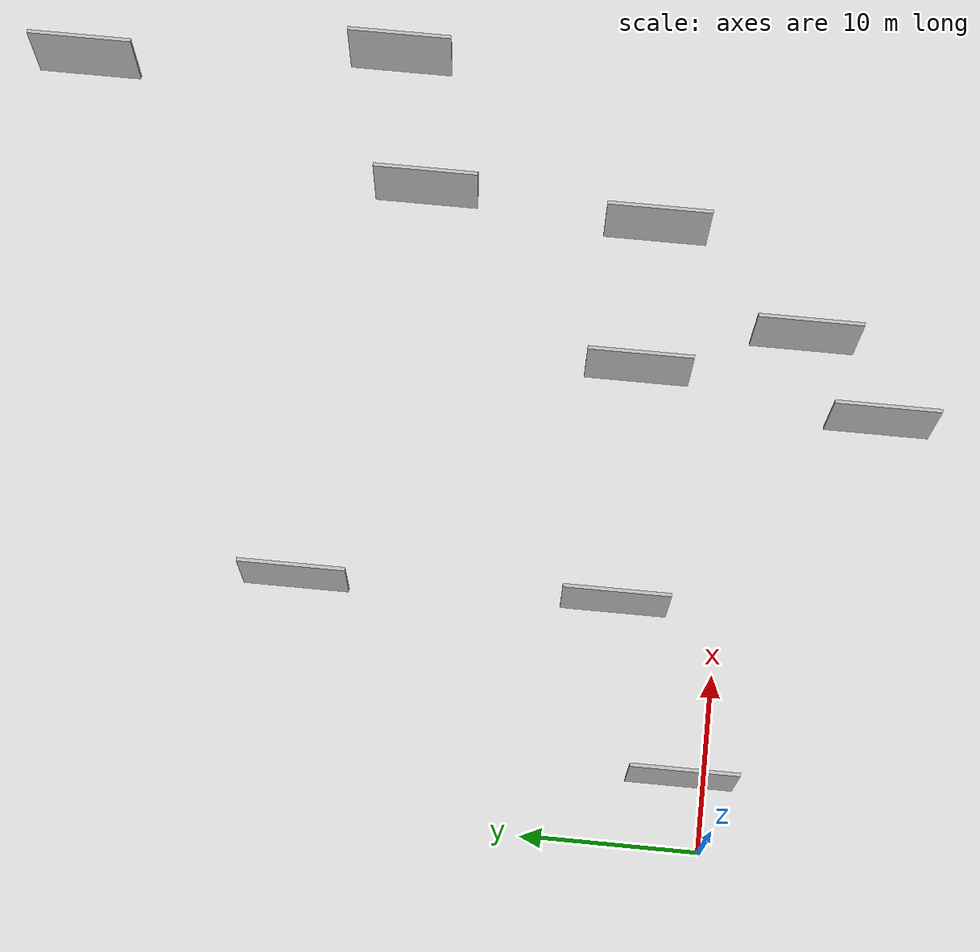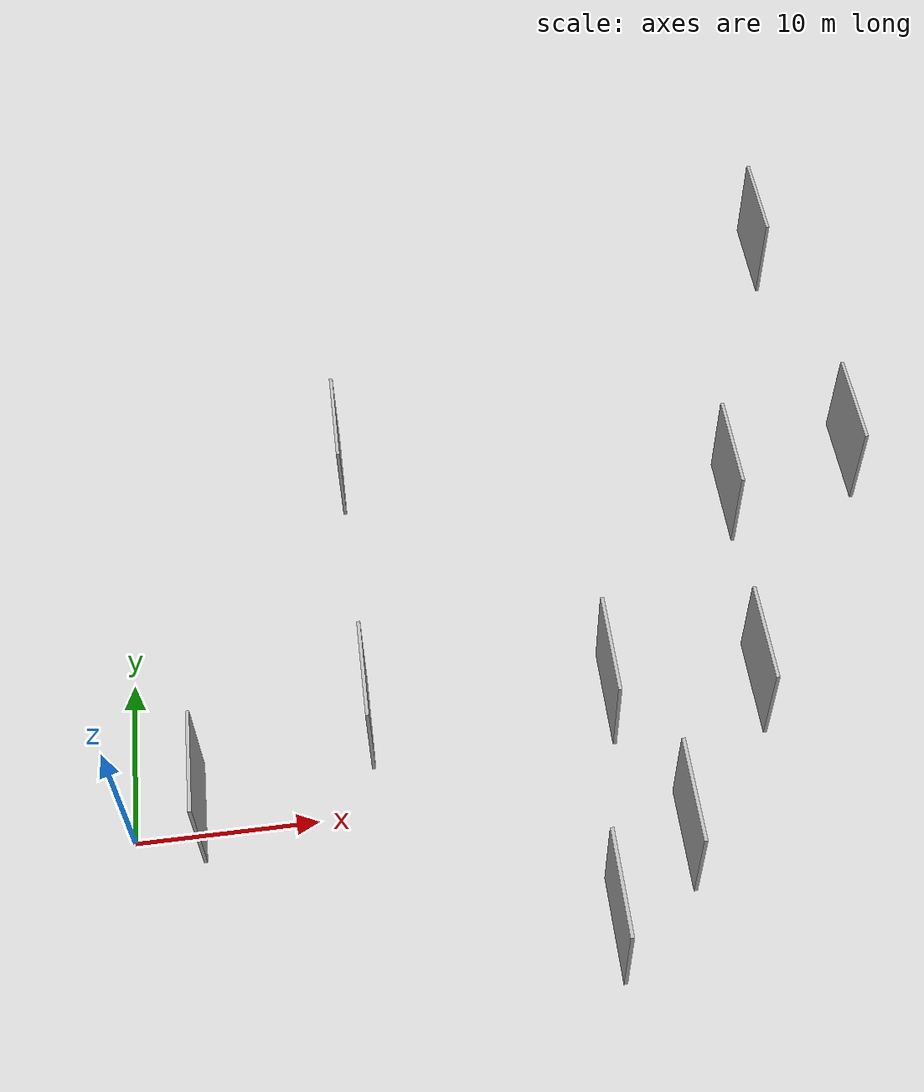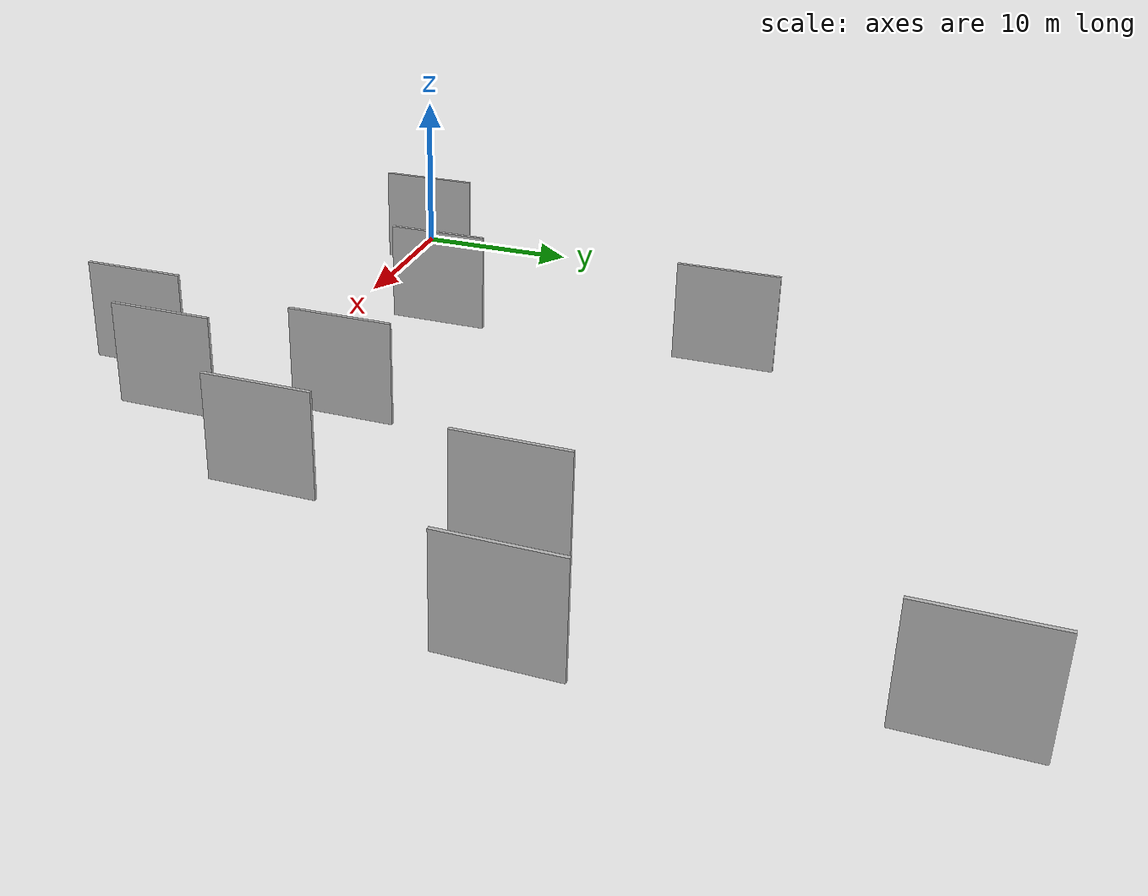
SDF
<sdf version="1.6">
 <world name="default">
  <scene>
   <sky><clouds><speed>12</speed></clouds></sky>
   <ambient>0.4 0.4 0.4 1</ambient>
   <background>0.7 0.7 0.7 1</background>
   <shadows>1</shadows>
  </scene>
  <gravity>0 0 -9.8066</gravity>
  <magnetic_field>6e-06 2.3e-05 -4.2e-05</magnetic_field>
  <physics default="0" name="default_physics" type="ode">
   <ode>
    <solver>
     <type>quick</type>
     <iters>10</iters>
     <sor>1.0</sor>
     <use_dynamic_moi_rescaling>0</use_dynamic_moi_rescaling>
    </solver>
    <constraints>
     <cfm>0</cfm>
     <erp>0.2</erp>
     <contact_max_correcting_vel>100</contact_max_correcting_vel>
     <contact_surface_layer>0.001</contact_surface_layer>
    </constraints>
   </ode>
   <max_step_size>0.004</max_step_size>
   <real_time_factor>1</real_time_factor>
   <real_time_update_rate>250</real_time_update_rate>
  </physics>
  <light name="sun" type="directional">
   <pose>0 0 10 0 0 0</pose>
   <diffuse>0.8 0.8 0.8 1</diffuse>
   <specular>0.2 0.2 0.2 1</specular>
   <attenuation>
    <range>1000</range>
    <constant>0.9</constant>
    <linear>0.01</linear>
    <quadratic>0.001</quadratic>
   </attenuation>
   <direction>-0.5 0.1 -0.9</direction>
  </light>
  <model name="grey_wall_1">
   <static>1</static>
   <pose>3.7303 1.3951 0.0 0.000000 0.000000 1.570796</pose>
   <link name="link">
    <pose>0 0 3.00 0 0 0</pose>
    <collision name="collision"><geometry><box><size>6.00 0.2 6.00</size></box></geometry></collision>
    <visual name="visual">
     <cast_shadows>0</cast_shadows>
     <geometry><box><size>6.00 0.2 6.00</size></box></geometry>
     <material>
      <script>
       <uri>model://HANNAS_wall/materials/scripts</uri>
       <uri>model://HANNAS_wall/materials/textures</uri>
       <name>vrc/HANNAS_wall</name>
      </script>
     </material>
    </visual>
   </link>
  </model>
  <model name="grey_wall_2">
   <static>1</static>
   <pose>25.0287 -8.3169 0.0 0.000000 0.000000 1.570796</pose>
   <link name="link">
    <pose>0 0 3.00 0 0 0</pose>
    <collision name="collision"><geometry><box><size>6.00 0.2 6.00</size></box></geometry></collision>
    <visual name="visual">
     <cast_shadows>0</cast_shadows>
     <geometry><box><size>6.00 0.2 6.00</size></box></geometry>
     <material>
      <script>
       <uri>model://HANNAS_wall/materials/scripts</uri>
       <uri>model://HANNAS_wall/materials/textures</uri>
       <name>vrc/HANNAS_wall</name>
      </script>
     </material>
    </visual>
   </link>
  </model>
  <model name="grey_wall_3">
   <static>1</static>
   <pose>42.5905 39.3405 0.0 0.000000 0.000000 1.570796</pose>
   <link name="link">
    <pose>0 0 3.00 0 0 0</pose>
    <collision name="collision"><geometry><box><size>6.00 0.2 6.00</size></box></geometry></collision>
    <visual name="visual">
     <cast_shadows>0</cast_shadows>
     <geometry><box><size>6.00 0.2 6.00</size></box></geometry>
     <material>
      <script>
       <uri>model://HANNAS_wall/materials/scripts</uri>
       <uri>model://HANNAS_wall/materials/textures</uri>
       <name>vrc/HANNAS_wall</name>
      </script>
     </material>
    </visual>
   </link>
  </model>
  <model name="grey_wall_4">
   <static>1</static>
   <pose>26.8519 5.6641 0.0 0.000000 0.000000 1.570796</pose>
   <link name="link">
    <pose>0 0 3.00 0 0 0</pose>
    <collision name="collision"><geometry><box><size>6.00 0.2 6.00</size></box></geometry></collision>
    <visual name="visual">
     <cast_shadows>0</cast_shadows>
     <geometry><box><size>6.00 0.2 6.00</size></box></geometry>
     <material>
      <script>
       <uri>model://HANNAS_wall/materials/scripts</uri>
       <uri>model://HANNAS_wall/materials/textures</uri>
       <name>vrc/HANNAS_wall</name>
      </script>
     </material>
    </visual>
   </link>
  </model>
  <model name="grey_wall_5">
   <static>1</static>
   <pose>12.9816 23.8566 0.0 0.000000 0.000000 1.570796</pose>
   <link name="link">
    <pose>0 0 3.00 0 0 0</pose>
    <collision name="collision"><geometry><box><size>6.00 0.2 6.00</size></box></geometry></collision>
    <visual name="visual">
     <cast_shadows>0</cast_shadows>
     <geometry><box><size>6.00 0.2 6.00</size></box></geometry>
     <material>
      <script>
       <uri>model://HANNAS_wall/materials/scripts</uri>
       <uri>model://HANNAS_wall/materials/textures</uri>
       <name>vrc/HANNAS_wall</name>
      </script>
     </material>
    </visual>
   </link>
  </model>
  <model name="grey_wall_6">
   <static>1</static>
   <pose>13.2272 5.8649 0.0 0.000000 0.000000 1.570796</pose>
   <link name="link">
    <pose>0 0 3.00 0 0 0</pose>
    <collision name="collision"><geometry><box><size>6.00 0.2 6.00</size></box></geometry></collision>
    <visual name="visual">
     <cast_shadows>0</cast_shadows>
     <geometry><box><size>6.00 0.2 6.00</size></box></geometry>
     <material>
      <script>
       <uri>model://HANNAS_wall/materials/scripts</uri>
       <uri>model://HANNAS_wall/materials/textures</uri>
       <name>vrc/HANNAS_wall</name>
      </script>
     </material>
    </visual>
   </link>
  </model>
  <model name="grey_wall_7">
   <static>1</static>
   <pose>29.6356 -3.7017 0.0 0.000000 0.000000 1.570796</pose>
   <link name="link">
    <pose>0 0 3.00 0 0 0</pose>
    <collision name="collision"><geometry><box><size>6.00 0.2 6.00</size></box></geometry></collision>
    <visual name="visual">
     <cast_shadows>0</cast_shadows>
     <geometry><box><size>6.00 0.2 6.00</size></box></geometry>
     <material>
      <script>
       <uri>model://HANNAS_wall/materials/scripts</uri>
       <uri>model://HANNAS_wall/materials/textures</uri>
       <name>vrc/HANNAS_wall</name>
      </script>
     </material>
    </visual>
   </link>
  </model>
  <model name="grey_wall_8">
   <static>1</static>
   <pose>35.4397 5.2696 0.0 0.000000 0.000000 1.570796</pose>
   <link name="link">
    <pose>0 0 3.00 0 0 0</pose>
    <collision name="collision"><geometry><box><size>6.00 0.2 6.00</size></box></geometry></collision>
    <visual name="visual">
     <cast_shadows>0</cast_shadows>
     <geometry><box><size>6.00 0.2 6.00</size></box></geometry>
     <material>
      <script>
       <uri>model://HANNAS_wall/materials/scripts</uri>
       <uri>model://HANNAS_wall/materials/textures</uri>
       <name>vrc/HANNAS_wall</name>
      </script>
     </material>
    </visual>
   </link>
  </model>
  <model name="grey_wall_9">
   <static>1</static>
   <pose>36.4482 18.7355 0.0 0.000000 0.000000 1.570796</pose>
   <link name="link">
    <pose>0 0 3.00 0 0 0</pose>
    <collision name="collision"><geometry><box><size>6.00 0.2 6.00</size></box></geometry></collision>
    <visual name="visual">
     <cast_shadows>0</cast_shadows>
     <geometry><box><size>6.00 0.2 6.00</size></box></geometry>
     <material>
      <script>
       <uri>model://HANNAS_wall/materials/scripts</uri>
       <uri>model://HANNAS_wall/materials/textures</uri>
       <name>vrc/HANNAS_wall</name>
      </script>
     </material>
    </visual>
   </link>
  </model>
  <model name="grey_wall_10">
   <static>1</static>
   <pose>44.5125 21.0400 0.0 0.000000 0.000000 1.570796</pose>
   <link name="link">
    <pose>0 0 3.00 0 0 0</pose>
    <collision name="collision"><geometry><box><size>6.00 0.2 6.00</size></box></geometry></collision>
    <visual name="visual">
     <cast_shadows>0</cast_shadows>
     <geometry><box><size>6.00 0.2 6.00</size></box></geometry>
     <material>
      <script>
       <uri>model://HANNAS_wall/materials/scripts</uri>
       <uri>model://HANNAS_wall/materials/textures</uri>
       <name>vrc/HANNAS_wall</name>
      </script>
     </material>
    </visual>
   </link>
  </model>
 </world>
</sdf>
